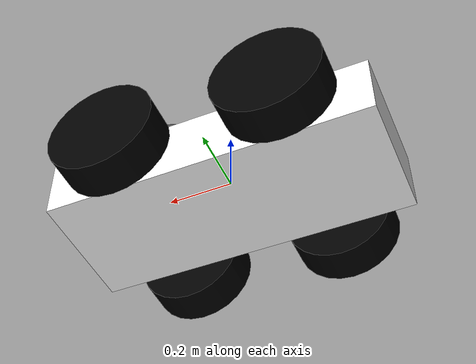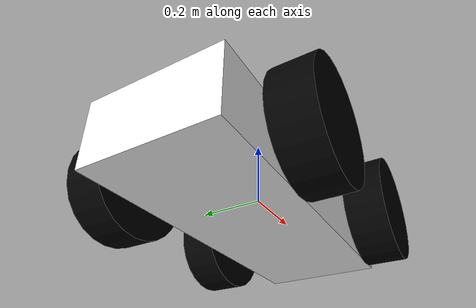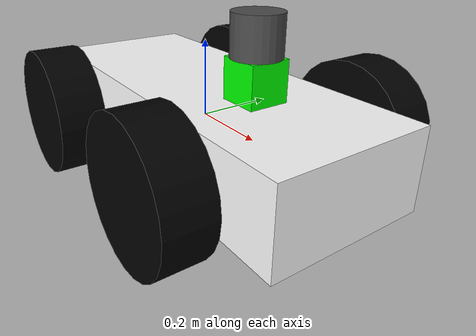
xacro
<?xml version="1.0" encoding="utf-8"?>

<robot name="robot" xmlns:xacro="http://www.ros.org/wiki/xacro">
    <xacro:property name="length_wheel" value="0.116" />
    <xacro:property name="radius_wheel" value="0.165" />
    <xacro:property name="PI" value="3.1415926"/>
	<xacro:property name="wheel_kp" value="1000000"/>
	<xacro:property name="wheel_kd" value="1"/>
    <xacro:macro name="default_inertial" params="mass">
		<inertial>
			<mass value="1"/>
			<inertia ixx="0.1" ixy="0.0" ixz="0.0" iyy="0.1" iyz="0.0" izz="0.1" />
		</inertial>
	</xacro:macro>

  	<link name="base_link">
    	<visual>
    		<geometry>
      			<box size="1.00 0.4 0.2"/>
    		</geometry>
			<origin rpy="0 0 0" xyz="0 0 0"/>
			<material name="white">
				<color rgba="1 1 1 1"/>
			</material>
    	</visual>
		<collision>
			<geometry>
       			<box size="1.0 0.4 0.2"/>
			</geometry>
		</collision>
    	<xacro:default_inertial mass="0.1"/>
 	</link>

 	<link name="wheel_1">
		<visual>
			<geometry>
				<cylinder length="${length_wheel}" radius="${radius_wheel}"/>
			</geometry>
			<origin rpy="0 0 0" xyz="0 0 0"/>
			<material name="black">
				<color rgba="0 0 0 1"/>
			</material>
		</visual>
		<collision>
			<origin rpy="0 0 0" xyz="0 0 0"/>
			<geometry>
        		<cylinder length="${length_wheel}" radius="${radius_wheel}"/>
			</geometry>
		</collision>
      	<mu1>0.5</mu1>
		<mu2>0.5</mu2>
		<xacro:default_inertial mass="0.01"/>
 	</link>

 	<link name="wheel_2">
		<visual>
			<geometry>
				<cylinder length="${length_wheel}" radius="${radius_wheel}"/>
			</geometry>
			<origin rpy="0 0 0" xyz="0 0 0"/>
			<material name="black"/>
		</visual>
		<collision>
			<origin rpy="0 0 0" xyz="0 0 0"/>
			<geometry>
        		<cylinder length="${length_wheel}" radius="${radius_wheel}"/>
			</geometry>
		</collision>
    	<mu1>0.5</mu1>
    	<mu2>0.5</mu2>
		<xacro:default_inertial mass="0.01"/>
 	</link>

 	<link name="wheel_3">
		<visual>
			<geometry>
				<cylinder length="${length_wheel}" radius="${radius_wheel}"/>
			</geometry>
					<origin rpy="0 0 0" xyz="0 0 0"/>
			<material name="black"/>
		</visual>
		<collision>
			<origin rpy="0 0 0" xyz="0 0 0"/>
			<geometry>
        		<cylinder length="${length_wheel}" radius="${radius_wheel}"/>
			</geometry>
		</collision>
		<mu1>0.5</mu1>
		<mu2>0.5</mu2>
		<xacro:default_inertial mass="0.01"/>
 	</link>

 	<link name="wheel_4">
		<visual>
			<geometry>
				<cylinder length="${length_wheel}" radius="${radius_wheel}"/>
			</geometry>
			<origin rpy="0 0 0" xyz="0 0 0"/>
			<material name="black"/>
		</visual>
		<collision>
			<origin rpy="0 0 0" xyz="0 0 0"/>
			<geometry>
        		<cylinder length="${length_wheel}" radius="${radius_wheel}"/>
			</geometry>
		</collision>
		<mu1>0.5</mu1>
		<mu2>0.5</mu2>
		<xacro:default_inertial mass="0.01"/>
 	</link>

  	<link name="imu">
		<collision>
			<origin xyz="0 0 0" rpy="0 0 0"/>
			<geometry>
				<box size="0.1 0.1 0.1"/>
			</geometry>
		</collision>

    	<visual>
      		<origin xyz="0 0 0" rpy="0 0 0"/>
			<geometry>
				<box size="0.1 0.1 0.1"/>
			</geometry>
      		<material name="blue">
        		<color rgba="0 1 0 1"/>
      		</material>
    	</visual>

		<inertial>
			<mass value="1e-4" />
			<origin xyz="0 0 0" rpy="0 0 0"/>
			<inertia ixx="1e-6" ixy="0" ixz="0" iyy="1e-6" iyz="0" izz="1e-6" />
		</inertial>
  	</link>

	<link name="rslidar">
		<collision>
			<origin xyz="0 0 0" rpy="0 0 0"/>
			<geometry>
				<cylinder length="0.1" radius="0.06"/>
			</geometry>
		</collision>

		<visual>
			<origin xyz="0 0 0" rpy="0 0 0"/>
			<geometry>
				<cylinder length="0.1" radius="0.06"/>
			</geometry>
		</visual>

		<inertial>
			<mass value="1e-4" />
			<origin xyz="0 0 0" rpy="0 0 0"/>
			<inertia ixx="1e-6" ixy="0" ixz="0" iyy="1e-6" iyz="0" izz="1e-6" />
		</inertial>
	</link>

	<joint name="base_to_wheel1" type="continuous">
		<parent link="base_link"/>
		<child link="wheel_1"/>
		<origin rpy="${-PI/2} 0 0" xyz="0.25 0.30 0"/>
		<axis xyz="0 0 1" />
	</joint>

	<joint name="base_to_wheel2" type="continuous">
		<axis xyz="0 0 1" />
		<parent link="base_link"/>
		<child link="wheel_2"/>
		<origin rpy="${-PI/2} 0 0" xyz="-0.25 0.30 0"/>
	</joint>

	<joint name="base_to_wheel3" type="continuous">
		<parent link="base_link"/>
		<axis xyz="0 0 1" />
		<child link="wheel_3"/>
		<origin rpy="${-PI/2} 0 0" xyz="0.25 -0.3 0"/>
	</joint>

	<joint name="base_to_wheel4" type="continuous">
		<parent link="base_link"/>
		<axis xyz="0 0 1" />
		<child link="wheel_4"/>
		<origin rpy="${-PI/2} 0 0" xyz="-0.25 -0.3 0"/>
	</joint>

	<joint name="imu_joint" type="fixed">
		<axis xyz="0 1 0" />
		<origin xyz="0.2 0 0.15" rpy="0 0 0"/>
		<parent link="base_link"/>
		<child link="imu"/>
	</joint>

	<joint name="rslidar_joint" type="fixed">
		<origin xyz="0.2 0.0 0.25" rpy="0 0 0"/>
		<parent link="base_link"/>
		<axis xyz="0 1 0" />
		<child link="rslidar"/>
	</joint>

	<gazebo reference="base_link">
		<material>Gazebo/DarkGrey</material>
	</gazebo>

	<gazebo reference="wheel_1">
		<material>Gazebo/Red</material>
	</gazebo>

	<gazebo reference="wheel_2">
		<material>Gazebo/Blue</material>
	</gazebo>

	<gazebo reference="wheel_3">
    	<material>Gazebo/Red</material>
 	</gazebo>

	<gazebo reference="wheel_4">
    	<material>Gazebo/Blue</material>
	</gazebo>

	<gazebo>
		<plugin name="diff_controller" filename="libgazebo_ros_planar_move.so">
			<commandTopic>cmd_vel</commandTopic>
			<odometryTopic>odom</odometryTopic>
			<odometryFrame>odom</odometryFrame>
			<robotNamespace>/</robotNamespace>
			<leftFrontJoint>base_to_wheel1</leftFrontJoint>
			<rightFrontJoint>base_to_wheel3</rightFrontJoint>
			<leftRearJoint>base_to_wheel2</leftRearJoint>
			<rightRearJoint>base_to_wheel4</rightRearJoint>
			<odometryRate>0.0</odometryRate>
			<robotBaseFrame>base_link</robotBaseFrame>
		</plugin>
	</gazebo>

	<gazebo reference="imu">
		<material>Gazebo/White</material>
		<gravity>true</gravity>
		<sensor name="imu_sensor" type="imu">
			<always_on>true</always_on>
			<update_rate>100</update_rate>
			<visualize>true</visualize>
			<topic>imu</topic>
			<plugin filename="libgazebo_ros_imu_sensor.so" name="imu_plugin">
				<topicName>imu</topicName>
				<bodyName>imu</bodyName>
				<updateRateHZ>100.0</updateRateHZ>
				<gaussianNoise>0.0</gaussianNoise>
				<xyzOffset>0 0 0</xyzOffset>
				<rpyOffset>0 0 0</rpyOffset>
				<frameName>imu</frameName>
			</plugin>
			<pose>0 0 0 0 0 0</pose>
		</sensor>
	</gazebo>

	<gazebo reference="rslidar">
		<material>Gazebo/DarkGrey</material>
		<sensor type="ray" name="sl_a1">
			<pose>0 0 0 0 0 0</pose>
			<visualize>false</visualize>
			<update_rate>10</update_rate>
			<ray>
				<scan>
					<horizontal>
						<samples>2000</samples>
						<resolution>1</resolution>
						<min_angle>-${PI}</min_angle>
						<max_angle>${PI}</max_angle>
					</horizontal>
					<vertical>
						<samples>1</samples>
						<resolution>1</resolution>
						<min_angle>-${0*PI/180.0}</min_angle>
						<max_angle> ${0*PI/180.0}</max_angle>
					</vertical>
				</scan>
				<range>
					<min>0.2</min>
					<max>100.0</max>
					<resolution>0.001</resolution>
				</range>
				<noise>
					<type>gaussian</type>
					<mean>0.0</mean>
					<stddev>0.0</stddev>
				</noise>
			</ray>
			<plugin name="gazebo_ros_laser_controller" filename="libgazebo_ros_ray_sensor.so">
				<topicName>/scan</topicName>
				<frameName>rslidar</frameName>
				<organize_cloud>false</organize_cloud>
				<min_range>0.2</min_range>
				<max_range>100.0</max_range>
				<gaussianNoise>0.008</gaussianNoise>
			</plugin>
		</sensor>
	</gazebo>

</robot>
